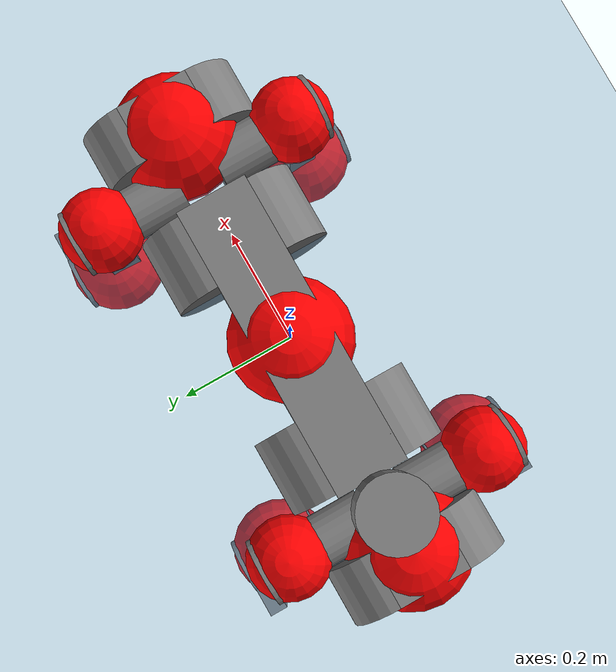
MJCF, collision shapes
<mujoco model="anymal_c">
  <compiler angle="radian" assetdir="assets" balanceinertia="true" inertiafromgeom="false"/>

  <option timestep="0.005" density="1.2" viscosity="2e-05"/>

  <size nkey="1"/>

  <visual>
    <quality shadowsize="8192"/>
    <map shadowclip="0.5"/>
  </visual>

  <default>
    <default class="/">
      <material specular="0" shininess="0.25"/>
      <geom contype="0" conaffinity="0" group="1" solref="-1000 -80"/>
      <site size="0.01 0.005 0.005" group="5"/>
      <general forcelimited="true" forcerange="-80 80" biastype="affine" gainprm="80" biasprm="0 -80 -2"/>
      <default class="anymal_c">
        <joint armature="0.01" damping="0.01" frictionloss="0.1"/>
        <default class="visual">
          <geom type="mesh" group="2"/>
          <default class="visual_zflip"/>
        </default>
        <default class="collision">
          <geom type="cylinder" group="3"/>
          <default class="foot">
            <geom size="0.03 0 0" type="sphere" condim="6" priority="1" friction="0.8 0.02 0.01" solimp="0.015 1 0.03"/>
          </default>
        </default>
      </default>
      <default class="reward_collision_sphere">
        <geom group="5" rgba="1 0 0 1"/>
      </default>
    </default>
  </default>

  <asset>
    <texture type="skybox" colorspace="auto" name="//unnamed_texture_0" builtin="gradient" rgb1="0.95 0.95 0.95" rgb2="0.95 0.95 0.95" width="100" height="600"/>
    <texture type="2d" colorspace="auto" name="texplane" builtin="checker" rgb1="0.345 0.575 0.748" rgb2="0.345 0.575 0.748" markrgb="1 1 1" width="512" height="512"/>
    <texture type="2d" colorspace="linear" name="base" file="base.png"/>
    <texture type="2d" colorspace="linear" name="top_shell" file="top_shell.png"/>
    <texture type="2d" colorspace="linear" name="bottom_shell" file="bottom_shell.png"/>
    <texture type="2d" colorspace="linear" name="remote" file="remote.png"/>
    <texture type="2d" colorspace="linear" name="hatch" file="hatch.png"/>
    <texture type="2d" colorspace="linear" name="handle" file="handle.png"/>
    <texture type="2d" colorspace="linear" name="face" file="face.png"/>
    <texture type="2d" colorspace="linear" name="battery" file="battery.png"/>
    <texture type="2d" colorspace="linear" name="lidar_cage" file="lidar_cage.png"/>
    <texture type="2d" colorspace="linear" name="depth_camera" file="depth_camera.png"/>
    <texture type="2d" colorspace="linear" name="wide_angle_camera" file="wide_angle_camera.png"/>
    <texture type="2d" colorspace="linear" name="lidar" file="lidar.png"/>
    <texture type="2d" colorspace="linear" name="drive" file="drive.png"/>
    <texture type="2d" colorspace="linear" name="hip_l" file="hip_l.png"/>
    <texture type="2d" colorspace="linear" name="shank_l" file="shank_l.png"/>
    <texture type="2d" colorspace="linear" name="foot" file="foot.png"/>
    <texture type="2d" colorspace="linear" name="thigh" file="thigh.png"/>
    <texture type="2d" colorspace="linear" name="shank_r" file="shank_r.png"/>
    <texture type="2d" colorspace="linear" name="hip_r" file="hip_r.png"/>
    <material name="MatPlane" class="/" texture="texplane" texuniform="true" texrepeat="2 2" specular="0.9" shininess="0.5"/>
    <material name="black_plastic" class="/" rgba="0.007 0.007 0.007 1"/>
    <material name="green" class="/" rgba="0.052 0.178 0.033 1"/>
    <material name="red" class="/" rgba="0.178 0.006 0.005 1"/>
    <material name="yellow" class="/" rgba="0.178 0.119 0.006 1"/>
    <material name="lwl" class="/" rgba="0.8 0.8 0.8 1"/>
    <material name="base" class="/" texture="base"/>
    <material name="top_shell" class="/" texture="top_shell"/>
    <material name="bottom_shell" class="/" texture="bottom_shell"/>
    <material name="hip_l" class="/" texture="hip_l"/>
    <material name="thigh" class="/" texture="thigh"/>
    <material name="shank_l" class="/" texture="shank_l"/>
    <material name="foot" class="/" texture="foot"/>
    <material name="hip_r" class="/" texture="hip_r"/>
    <material name="shank" class="/" texture="shank_r"/>
    <material name="hatch" class="/" texture="hatch"/>
    <material name="remote" class="/" texture="remote"/>
    <material name="handle" class="/" texture="handle"/>
    <material name="face" class="/" texture="face"/>
    <material name="depth_camera" class="/" texture="depth_camera"/>
    <material name="wide_angle_camera" class="/" texture="wide_angle_camera"/>
    <material name="battery" class="/" texture="battery"/>
    <material name="lidar_cage" class="/" texture="lidar_cage"/>
    <material name="lidar" class="/" texture="lidar"/>
    <material name="drive" class="/" texture="drive"/>
    <mesh name="base_0" class="/" file="base_0.obj"/>
    <mesh name="base_1" class="/" file="base_1.obj"/>
    <mesh name="base_2" class="/" file="base_2.obj"/>
    <mesh name="base_3" class="/" file="base_3.obj"/>
    <mesh name="base_4" class="/" file="base_4.obj"/>
    <mesh name="base_5" class="/" file="base_5.obj"/>
    <mesh name="top_shell" class="/" file="top_shell.obj"/>
    <mesh name="bottom_shell" class="/" file="bottom_shell.obj"/>
    <mesh name="remote" class="/" file="remote.obj"/>
    <mesh name="handle" class="/" file="handle.obj"/>
    <mesh name="face" class="/" file="face.obj"/>
    <mesh name="wide_angle_camera" class="/" file="wide_angle_camera.obj"/>
    <mesh name="depth_camera" class="/" file="depth_camera.obj"/>
    <mesh name="battery" class="/" file="battery.obj"/>
    <mesh name="lidar_cage" class="/" file="lidar_cage.obj"/>
    <mesh name="lidar" class="/" file="lidar.obj"/>
    <mesh name="drive" class="/" file="drive.obj"/>
    <mesh name="hip_l" class="/" file="hip_l.obj"/>
    <mesh name="thigh" class="/" file="thigh.obj"/>
    <mesh name="shank_l" class="/" file="shank_l.obj"/>
    <mesh name="foot" class="/" file="foot.obj"/>
    <mesh name="hip_r" class="/" file="hip_r.obj"/>
    <mesh name="hatch" class="/" file="hatch.obj"/>
    <mesh name="shank_r" class="/" file="shank_r.obj"/>
  </asset>

  <worldbody>
    <geom name="floor" class="/" size="100 100 0.125" type="plane" group="0" material="MatPlane"/>
    <light name="toplight_shadow" class="/" pos="0 0 5" dir="0.0990148 0.0990148 -0.990148" type="directional" ambient="0.04 0.04 0.04" diffuse="0.55 0.55 0.55" specular="0.12 0.12 0.12"/>
    <light name="toplight_fill" class="/" pos="0 0 5" dir="0.0990148 0.0990148 -0.990148" type="directional" castshadow="false" ambient="0.04 0.04 0.04" diffuse="0.3 0.3 0.3" specular="0.08 0.08 0.08"/>
    <body name="trunk" childclass="anymal_c" pos="-0.00233068 0.000112466 -0.002814" quat="0.999999 -0.00103852 3.8915e-05 0.000812313">
      <inertial pos="-0.000868104 0.00256979 0.0493873" quat="0.502209 0.493069 0.501131 0.503524" mass="14.6496" diaginertia="0.339627 0.272259 0.217931"/>
      <joint name="//unnamed_joint_0" type="free" armature="0" damping="0" frictionloss="0"/>
      <geom name="//unnamed_geom_1" class="visual" material="green" mesh="base_0"/>
      <geom name="//unnamed_geom_2" class="visual" material="yellow" mesh="base_1"/>
      <geom name="//unnamed_geom_3" class="visual" material="red" mesh="base_2"/>
      <geom name="//unnamed_geom_4" class="visual" material="black_plastic" mesh="base_3"/>
      <geom name="//unnamed_geom_5" class="visual" material="lwl" mesh="base_4"/>
      <geom name="//unnamed_geom_6" class="visual" material="base" mesh="base_5"/>
      <geom name="trunk_1" class="collision" size="0.263669 0.0636442 0.0818282" type="box"/>
      <geom name="trunk_2" class="collision" size="0.0818282 0.0659172" pos="0.191109 0.0594515 0" quat="0.707107 0 0.707107 0"/>
      <geom name="trunk_3" class="collision" size="0.0818282 0.0659172" pos="-0.191109 0.0594515 0" quat="0.707107 0 0.707107 0"/>
      <geom name="trunk_4" class="collision" size="0.0818282 0.0659172" pos="0.191109 -0.0594515 0" quat="0.707107 0 0.707107 0"/>
      <geom name="trunk_5" class="collision" size="0.0818282 0.0659172" pos="-0.191109 -0.0594515 0" quat="0.707107 0 0.707107 0"/>
      <geom name="//unnamed_geom_12" class="visual" material="top_shell" mesh="top_shell"/>
      <geom name="//unnamed_geom_13" class="visual" material="bottom_shell" mesh="bottom_shell"/>
      <geom name="//unnamed_geom_14" class="visual" material="remote" mesh="remote"/>
      <geom name="//unnamed_geom_15" class="visual" material="handle" mesh="handle"/>
      <geom name="//unnamed_geom_16" class="visual" pos="0.364206 0 0" quat="1 0 0 0" material="face" mesh="face"/>
      <geom name="trunk_6" class="collision" size="0.0500061 0.0636442 0.0818282" pos="0.412533 0 0" type="box"/>
      <geom name="//unnamed_geom_18" class="collision" size="0.0818282 0.0500061" pos="0.412533 0.0594515 0" quat="0.707107 0 0.707107 0"/>
      <geom name="//unnamed_geom_19" class="collision" size="0.0818282 0.0500061" pos="0.412533 -0.0594515 0" quat="0.707107 0 0.707107 0"/>
      <geom name="//unnamed_geom_20" class="visual" pos="0.40564 0 -0.0301088" quat="0.965926 0 0.258819 0" material="depth_camera" mesh="depth_camera"/>
      <geom name="//unnamed_geom_21" class="visual" pos="0.450754 0 0.0149646" material="wide_angle_camera" mesh="wide_angle_camera"/>
      <geom name="//unnamed_geom_22" class="visual_zflip" pos="-0.364206 0 0" quat="0 0 0 1" material="face" mesh="face"/>
      <geom name="trunk_7" class="collision" size="0.0500061 0.0636442 0.0818282" pos="-0.412533 0 0" quat="0 0 0 1" type="box"/>
      <geom name="//unnamed_geom_24" class="collision" size="0.0818282 0.0500061" pos="-0.412533 -0.0594515 0" quat="0 -0.707107 0 0.707107"/>
      <geom name="//unnamed_geom_25" class="collision" size="0.0818282 0.0500061" pos="-0.412533 0.0594515 0" quat="0 -0.707107 0 0.707107"/>
      <geom name="//unnamed_geom_26" class="visual" pos="-0.40564 0 -0.0301088" quat="0 -0.258819 0 0.965926" material="depth_camera" mesh="depth_camera"/>
      <geom name="//unnamed_geom_27" class="visual_zflip" pos="-0.450754 0 0.0149646" quat="0 0 0 1" material="wide_angle_camera" mesh="wide_angle_camera"/>
      <geom name="//unnamed_geom_28" class="visual" material="battery" mesh="battery"/>
      <geom name="//unnamed_geom_29" class="visual" pos="0 0.0645578 0.02812" quat="0.683013 -0.183013 0.183013 0.683013" material="depth_camera" mesh="depth_camera"/>
      <geom name="//unnamed_geom_30" class="visual" pos="0 -0.0645578 0.02812" quat="0.683013 0.183013 0.183013 -0.683013" material="depth_camera" mesh="depth_camera"/>
      <geom name="//unnamed_geom_31" class="visual" pos="-0.319834 0 0.0734733" quat="1 0 0 0" material="lidar_cage" mesh="lidar_cage"/>
      <geom name="trunk_8" class="collision" size="0.0636442 0.0545521" pos="-0.319834 0 0.133451"/>
      <geom name="//unnamed_geom_33" class="visual" pos="-0.319834 -1.15333e-05 0.142148" quat="0.707107 0 0 -0.707107" material="lidar" mesh="lidar"/>
      <geom name="//unnamed_geom_34" class="visual" pos="0.263511 0.0883814 -2.59319e-09" quat="0.258819 0.965926 0 0" material="drive" mesh="drive"/>
      <geom name="//unnamed_geom_35" class="visual" pos="0.263511 -0.0883814 2.59319e-09" quat="0.258819 -0.965926 0 0" material="drive" mesh="drive"/>
      <geom name="//unnamed_geom_36" class="visual" pos="-0.263511 0.0883814 2.59319e-09" quat="0 0 0.965926 -0.258819" material="drive" mesh="drive"/>
      <geom name="//unnamed_geom_37" class="visual" pos="-0.263511 -0.0883814 -2.59319e-09" quat="0 0 -0.965926 -0.258819" material="drive" mesh="drive"/>
      <geom name="//unnamed_geom_38" class="visual" pos="0.101925 0 0.0729734" quat="1 0 0 0" material="hatch" mesh="hatch"/>
      <geom name="//unnamed_geom_39" class="reward_collision_sphere" size="0.109104"/>
      <geom name="//unnamed_geom_40" class="reward_collision_sphere" size="0.109104" pos="0.395399 0 0"/>
      <geom name="//unnamed_geom_41" class="reward_collision_sphere" size="0.109104" pos="-0.395399 0 0"/>
      <site name="imu" pos="0.232581 0.0107615 0.0341044" size="0.00909202"/>
      <camera name="track" pos="0 -1.69861 0" quat="0.707107 0.707107 0 0" mode="trackcom"/>
      <camera name="ego_camera" pos="0.395399 0 -0.0399854" quat="-0.5 -0.5 0.5 0.5"/>
      <body name="LF_HIP" pos="0.26334 0.0876529 -0.00164558" quat="0.258887 0.965908 -2.0166e-05 6.0736e-05">
        <inertial pos="0.0470662 -0.0135927 -0.00979915" quat="-0.124706 0.708711 -0.125229 0.683005" mass="2.09961" diaginertia="0.00308359 0.00219815 0.00342149"/>
        <joint name="LF_HAA" pos="0 0 0" axis="0.999872 -0.0144802 0.00675561" range="-0.705796 0.481249" armature="0.0101108" damping="0.00511612" frictionloss="0.0896331"/>
        <geom name="//unnamed_geom_42" class="visual" pos="0 -0.000152545 2.50555e-05" quat="0.258819 -0.965926 0 0" material="hip_l" mesh="hip_l"/>
        <geom name="//unnamed_geom_43" class="visual" pos="0.052632 -0.0634417 -0.03774" quat="0.183013 -0.683013 0.683013 0.183013" material="drive" mesh="drive"/>
        <geom name="//unnamed_geom_44" class="collision" size="0.0454601 0.0636442" pos="0.052632 -0.0101575 -0.00690249" quat="-0.353553 -0.612372 0.612372 -0.353553"/>
        <body name="LF_THIGH" pos="0.0531879 -0.0622818 -0.0456963" quat="0.18305 -0.682896 0.683137 0.182949">
          <inertial pos="0.0281576 -0.000538724 -0.244809" quat="0.992835 0.00374253 -0.0808184 0.0879365" mass="2.26122" diaginertia="0.015751 0.0125892 0.00416777"/>
          <joint name="LF_HFE" pos="0 0 0" axis="0.999986 0.00141259 0.0050174" stiffness="0.0135037" range="-3.14075 3.13408" armature="0.0078741" damping="0.00754669" frictionloss="0.0902731"/>
          <geom name="//unnamed_geom_45" class="visual" pos="0.000584074 9.20364e-07 0" quat="0.707107 0 0 -0.707107" material="thigh" mesh="thigh"/>
          <geom name="//unnamed_geom_46" class="collision" size="0.0590982 0.0363681" pos="0.0351465 0 0" quat="0.5 0.5 -0.5 -0.5"/>
          <geom name="//unnamed_geom_47" class="collision" size="0.0340951 0.0272761 0.128483" pos="0.0263599 0 -0.141263" quat="0.707107 0 0 -0.707107" type="box"/>
          <geom name="//unnamed_geom_48" class="visual" pos="0.08813 0 -0.284896" quat="1 0 0 0" material="drive" mesh="drive"/>
          <geom name="//unnamed_geom_49" class="collision" size="0.0454601 0.0636442" pos="0.0266235 0 -0.284896" quat="0.707107 0 0.707107 0"/>
          <geom name="//unnamed_geom_50" class="reward_collision_sphere" size="0.0727362" pos="0.0219666 0 0"/>
          <body name="LF_SHANK" pos="0.0871634 -0.000235366 -0.282612" quat="1 -9.42214e-05 5.7426e-05 -4.02603e-05">
            <inertial pos="0.00291627 -0.0547318 -0.0782162" quat="0.992933 -0.116106 0.00119031 -0.0245408" mass="0.442312" diaginertia="0.00544023 0.00398261 0.00111435"/>
            <joint name="LF_KFE" pos="0 0 0" axis="1 0.000341706 0.000477316" range="-3.08985 3.11697" armature="0.00906137" damping="0.00838037" frictionloss="0.0916902"/>
            <geom name="//unnamed_geom_51" class="visual" pos="0.000190454 0.00101551 0" quat="0.707107 0 0 -0.707107" material="shank_l" mesh="shank_l"/>
            <geom name="LF_kfe_act" class="collision" size="0.0545521 0.018184" pos="0.0175733 0 0" quat="0.5 0.5 -0.5 -0.5"/>
            <geom name="//unnamed_geom_53" class="collision" size="0.0522782 0.0306856 0.0172748" pos="0.0175733 -0.0488343 0" quat="0.5 0.5 -0.5 -0.5" type="box"/>
            <geom name="//unnamed_geom_54" class="visual" pos="0.0114665 -0.0743693 -0.337847" quat="0.382683 0 0 -0.92388" material="foot" mesh="foot"/>
            <geom name="LF_calf" class="collision" size="0.015911 0.128427" pos="0.0114666 -0.0746966 -0.168924" quat="0.707107 0 0 -0.707107"/>
            <geom name="LF_foot" class="foot" size="0.0276228" pos="0.0114666 -0.0746966 -0.315355" quat="0.707107 0 0 -0.707107"/>
            <geom name="//unnamed_geom_57" class="reward_collision_sphere" size="0.0909202" pos="-0.0439332 0 0"/>
            <geom name="//unnamed_geom_58" class="reward_collision_sphere" size="0.0454601" pos="0.0114666 -0.0746966 -0.315355"/>
            <site name="LF_foot" class="foot" pos="0.0114666 -0.0746966 -0.315355" quat="0.707107 0 0 -0.707107" size="0.00909202"/>
          </body>
        </body>
      </body>
      <body name="RF_HIP" pos="0.266893 -0.0856921 0.000725489" quat="0.25907 -0.965858 0.000217346 -5.84593e-05">
        <inertial pos="0.0482924 0.0108938 -0.00900676" quat="0.133102 0.679295 0.129967 0.709895" mass="2.0839" diaginertia="0.00297072 0.00225425 0.0033251"/>
        <joint name="RF_HAA" pos="0 0 0" axis="1 0.000944953 -9.08164e-05" range="-0.448021 0.703961" armature="0.00901212" damping="0.0119148" frictionloss="0.101325"/>
        <geom name="//unnamed_geom_59" class="visual" pos="0 0.000152544 2.50554e-05" quat="0.258819 0.965926 0 0" material="hip_r" mesh="hip_r"/>
        <geom name="//unnamed_geom_60" class="visual" pos="0.052632 0.0634417 -0.03774" quat="0.183013 0.683013 0.683013 -0.183013" material="drive" mesh="drive"/>
        <geom name="//unnamed_geom_61" class="collision" size="0.0454601 0.0636442" pos="0.052632 0.0101575 -0.00690249" quat="-0.353553 0.612372 0.612372 0.353553"/>
        <body name="RF_THIGH" pos="0.0557233 0.0624023 -0.0442575" quat="0.183228 0.683018 0.682805 -0.183551">
          <inertial pos="0.026776 0.00013761 -0.245648" quat="0.99274 -0.00783182 -0.0778922 0.0913187" mass="2.37897" diaginertia="0.0153561 0.0132912 0.00420161"/>
          <joint name="RF_HFE" pos="0 0 0" axis="0.999981 -0.00245833 0.005635" stiffness="0.00634939" range="-3.14928 3.17571" armature="0.00834454" damping="0.00875834" frictionloss="0.0965051"/>
          <geom name="//unnamed_geom_62" class="visual" pos="0.000584074 9.20364e-07 0" quat="0.707107 0 0 -0.707107" material="thigh" mesh="thigh"/>
          <geom name="//unnamed_geom_63" class="collision" size="0.0590982 0.0363681" pos="0.0351465 0 0" quat="0.5 0.5 0.5 0.5"/>
          <geom name="//unnamed_geom_64" class="collision" size="0.0340951 0.0272761 0.128483" pos="0.0263599 0 -0.141263" quat="0.707107 0 0 0.707107" type="box"/>
          <geom name="//unnamed_geom_65" class="visual" pos="0.08813 0 -0.284896" quat="1 0 0 0" material="drive" mesh="drive"/>
          <geom name="//unnamed_geom_66" class="collision" size="0.0454601 0.0636442" pos="0.0266235 0 -0.284896" quat="0.707107 0 0.707107 0"/>
          <geom name="//unnamed_geom_67" class="reward_collision_sphere" size="0.0727362" pos="0.0219666 0 0"/>
          <body name="RF_SHANK" pos="0.0882803 -0.000628665 -0.283594" quat="1 -0.000168574 3.78906e-05 3.07442e-05">
            <inertial pos="0.00615059 0.0510025 -0.0815624" quat="0.992585 0.119146 -0.0135254 0.0199145" mass="0.436613" diaginertia="0.00556822 0.00410264 0.00111944"/>
            <joint name="RF_KFE" pos="0 0 0" axis="0.999997 0.00222967 0.00111761" stiffness="0.00168432" range="-3.15941 3.08068" armature="0.0100936" damping="0.00768073" frictionloss="0.0904382"/>
            <geom name="//unnamed_geom_68" class="visual" pos="0.000190453 -0.00101551 0" quat="0.707107 0 0 0.707107" material="shank" mesh="shank_r"/>
            <geom name="RF_kfe_act" class="collision" size="0.0545521 0.018184" pos="0.0175733 0 0" quat="0.5 0.5 0.5 0.5"/>
            <geom name="//unnamed_geom_70" class="collision" size="0.0522782 0.0306856 0.0172748" pos="0.0175733 0.0488343 0" quat="0.5 0.5 0.5 0.5" type="box"/>
            <geom name="//unnamed_geom_71" class="visual" pos="0.0114666 0.0743693 -0.337847" quat="0.382683 0 0 0.92388" material="foot" mesh="foot"/>
            <geom name="RF_calf" class="collision" size="0.015911 0.128427" pos="0.0114666 0.0746966 -0.168924" quat="0.707107 0 0 0.707107"/>
            <geom name="RF_foot" class="foot" size="0.0294298" pos="0.0114666 0.0746966 -0.315355" quat="0.707107 0 0 0.707107"/>
            <geom name="//unnamed_geom_74" class="reward_collision_sphere" size="0.0909202" pos="-0.0439332 0 0"/>
            <geom name="//unnamed_geom_75" class="reward_collision_sphere" size="0.0454601" pos="0.0114666 0.0746966 -0.315355"/>
            <site name="RF_foot" class="foot" pos="0.0114666 0.0746966 -0.315355" quat="0.707107 0 0 0.707107" size="0.00909202"/>
          </body>
        </body>
      </body>
      <body name="LH_HIP" pos="-0.262942 0.086336 1.63373e-05" quat="0.000297708 0.000183529 0.965984 -0.258603">
        <inertial pos="0.0496377 0.0134816 -0.00913796" quat="0.13515 0.679054 0.127837 0.710125" mass="2.11556" diaginertia="0.00312588 0.00211152 0.00326068"/>
        <joint name="LH_HAA" pos="0 0 0" axis="0.999998 -0.000239374 0.00171666" range="-0.499683 0.738528" armature="0.00916136" damping="0" frictionloss="0.0948918"/>
        <geom name="//unnamed_geom_76" class="visual" pos="0 0.000152544 2.50554e-05" quat="-0.258819 -0.965926 0 0" material="hip_r" mesh="hip_r"/>
        <geom name="//unnamed_geom_77" class="visual" pos="0.052632 0.0634417 -0.03774" quat="0.183013 0.683013 0.683013 -0.183013" material="drive" mesh="drive"/>
        <geom name="//unnamed_geom_78" class="collision" size="0.0454601 0.0636442" pos="0.052632 0.0101575 -0.00690249" quat="-0.353553 0.612372 0.612372 0.353553"/>
        <body name="LH_THIGH" pos="0.0510447 0.0607572 -0.0424891" quat="0.183041 0.683047 0.682982 -0.182969">
          <inertial pos="0.026055 9.89791e-05 -0.244832" quat="0.992233 -0.00408429 -0.0827202 0.092814" mass="2.36255" diaginertia="0.0162912 0.0134912 0.00427443"/>
          <joint name="LH_HFE" pos="0 0 0" axis="0.999976 0.00619157 -0.00302399" range="-3.15855 3.11866" armature="0.0101663" damping="0.0184642" frictionloss="0.0935412"/>
          <geom name="//unnamed_geom_79" class="visual" pos="0.000584074 9.20364e-07 0" quat="0.707107 0 0 -0.707107" material="thigh" mesh="thigh"/>
          <geom name="//unnamed_geom_80" class="collision" size="0.0590982 0.0363681" pos="0.0351465 0 0" quat="0.5 0.5 -0.5 -0.5"/>
          <geom name="//unnamed_geom_81" class="collision" size="0.0340951 0.0272761 0.128483" pos="0.0263599 0 -0.141263" quat="0.707107 0 0 -0.707107" type="box"/>
          <geom name="//unnamed_geom_82" class="visual" pos="0.08813 0 -0.284896" quat="1 0 0 0" material="drive" mesh="drive"/>
          <geom name="//unnamed_geom_83" class="collision" size="0.0454601 0.0636442" pos="0.0266235 0 -0.284896" quat="0.707107 0 0.707107 0"/>
          <geom name="//unnamed_geom_84" class="reward_collision_sphere" size="0.0727362" pos="0.0219666 0 0"/>
          <body name="LH_SHANK" pos="0.0859525 0.00177629 -0.286843" quat="1 -0.000289283 -0.000140695 0.00030691">
            <inertial pos="0.00759851 0.0491811 -0.0781639" quat="0.992832 0.117868 -0.00660211 0.0186359" mass="0.432459" diaginertia="0.00531547 0.00423652 0.0010898"/>
            <joint name="LH_KFE" pos="0 0 0" axis="0.99989 -0.00387484 0.0143207" stiffness="0.00365572" range="-3.10178 3.13807" armature="0.00907031" damping="0.0100015" frictionloss="0.10344"/>
            <geom name="//unnamed_geom_85" class="visual" pos="0.000190453 -0.00101551 0" quat="-0.707107 0 0 -0.707107" material="shank" mesh="shank_r"/>
            <geom name="LH_kfe_act" class="collision" size="0.0545521 0.018184" pos="0.0175733 0 0" quat="0.5 0.5 -0.5 -0.5"/>
            <geom name="//unnamed_geom_87" class="collision" size="0.0522782 0.0306856 0.0172748" pos="0.0175733 0.0488343 0" quat="0.5 0.5 -0.5 -0.5" type="box"/>
            <geom name="//unnamed_geom_88" class="visual" pos="0.0114666 0.0743693 -0.337847" quat="-0.382683 0 0 -0.92388" material="foot" mesh="foot"/>
            <geom name="LH_calf" class="collision" size="0.015911 0.128427" pos="0.0114666 0.0746966 -0.168924" quat="0.707107 0 0 -0.707107"/>
            <geom name="LH_foot" class="foot" size="0.0315004" pos="0.0114666 0.0746966 -0.315355" quat="0.707107 0 0 -0.707107"/>
            <geom name="//unnamed_geom_91" class="reward_collision_sphere" size="0.0909202" pos="-0.0439332 0 0"/>
            <geom name="//unnamed_geom_92" class="reward_collision_sphere" size="0.0454601" pos="0.0114666 0.0746966 -0.315355"/>
            <site name="LH_foot" class="foot" pos="0.0114666 0.0746966 -0.315355" quat="0.707107 0 0 -0.707107" size="0.00909202"/>
          </body>
        </body>
      </body>
      <body name="RH_HIP" pos="-0.263548 -0.0912256 0.000847616" quat="-0.000669144 -0.000473143 -0.965781 -0.259357">
        <inertial pos="0.049085 -0.0120498 -0.0108203" quat="-0.127104 0.709856 -0.135766 0.67935" mass="2.1685" diaginertia="0.00305818 0.0021578 0.00328713"/>
        <joint name="RH_HAA" pos="0 0 0" axis="0.999963 -0.000481487 -0.00857209" range="-0.676956 0.457267" armature="0.00787116" damping="0.00236594" frictionloss="0.10194"/>
        <geom name="//unnamed_geom_93" class="visual" pos="0 -0.000152545 2.50555e-05" quat="-0.258819 0.965926 0 0" material="hip_l" mesh="hip_l"/>
        <geom name="//unnamed_geom_94" class="visual" pos="0.052632 -0.0634417 -0.03774" quat="-0.183013 0.683013 -0.683013 -0.183013" material="drive" mesh="drive"/>
        <geom name="//unnamed_geom_95" class="collision" size="0.0454601 0.0636442" pos="0.052632 -0.0101575 -0.00690249" quat="0.353553 0.612372 -0.612372 0.353553"/>
        <body name="RH_THIGH" pos="0.0535666 -0.0606514 -0.0411955" quat="-0.183014 0.683007 -0.683027 -0.182981">
          <inertial pos="0.0246319 0.00228161 -0.245295" quat="0.993126 -0.00605528 -0.0812041 0.0840864" mass="2.21283" diaginertia="0.0160541 0.0130329 0.00417979"/>
          <joint name="RH_HFE" pos="0 0 0" axis="0.999904 -0.0101492 0.00948048" stiffness="0.00595269" range="-3.14862 3.15967" armature="0.00882702" damping="0.0061521" frictionloss="0.0837054"/>
          <geom name="//unnamed_geom_96" class="visual" pos="0.000584074 9.20364e-07 0" quat="0.707107 0 0 -0.707107" material="thigh" mesh="thigh"/>
          <geom name="//unnamed_geom_97" class="collision" size="0.0590982 0.0363681" pos="0.0351465 0 0" quat="0.5 0.5 0.5 0.5"/>
          <geom name="//unnamed_geom_98" class="collision" size="0.0340951 0.0272761 0.128483" pos="0.0263599 0 -0.141263" quat="0.707107 0 0 0.707107" type="box"/>
          <geom name="//unnamed_geom_99" class="visual" pos="0.08813 0 -0.284896" quat="1 0 0 0" material="drive" mesh="drive"/>
          <geom name="//unnamed_geom_100" class="collision" size="0.0454601 0.0636442" pos="0.0266235 0 -0.284896" quat="0.707107 0 0.707107 0"/>
          <geom name="//unnamed_geom_101" class="reward_collision_sphere" size="0.0727362" pos="0.0219666 0 0"/>
          <body name="RH_SHANK" pos="0.0881228 -0.000405205 -0.285569" quat="1 -0.000123305 -0.000111015 -0.000200851">
            <inertial pos="0.00732663 -0.0520351 -0.081202" quat="0.992954 -0.115537 -0.000227793 -0.0263175" mass="0.41696" diaginertia="0.00508418 0.00398909 0.00106931"/>
            <joint name="RH_KFE" pos="0 0 0" axis="0.99995 0.00535665 -0.00841989" range="-3.12662 3.19049" armature="0.00795249" damping="0.0111312" frictionloss="0.093569"/>
            <geom name="//unnamed_geom_102" class="visual" pos="0.000190454 0.00101551 0" quat="0.707107 0 0 -0.707107" material="shank_l" mesh="shank_l"/>
            <geom name="RH_kfe_act" class="collision" size="0.0545521 0.018184" pos="0.0175733 0 0" quat="0.5 0.5 0.5 0.5"/>
            <geom name="//unnamed_geom_104" class="collision" size="0.0522782 0.0306856 0.0172748" pos="0.0175733 -0.0488343 0" quat="0.5 0.5 0.5 0.5" type="box"/>
            <geom name="//unnamed_geom_105" class="visual" pos="0.0114665 -0.0743693 -0.337847" quat="0.382683 0 0 -0.92388" material="foot" mesh="foot"/>
            <geom name="RH_calf" class="collision" size="0.015911 0.128427" pos="0.0114666 -0.0746966 -0.168924" quat="0.707107 0 0 0.707107"/>
            <geom name="RH_foot" class="foot" size="0.0222699" pos="0.0114666 -0.0746966 -0.315355" quat="0.707107 0 0 0.707107"/>
            <geom name="//unnamed_geom_108" class="reward_collision_sphere" size="0.0909202" pos="-0.0439332 0 0"/>
            <geom name="//unnamed_geom_109" class="reward_collision_sphere" size="0.0454601" pos="0.0114666 -0.0746966 -0.315355"/>
            <site name="RH_foot" class="foot" pos="0.0114666 -0.0746966 -0.315355" quat="0.707107 0 0 0.707107" size="0.00909202"/>
          </body>
        </body>
      </body>
    </body>
  </worldbody>

  <contact>
    <pair class="/" geom1="floor" geom2="LF_foot" name="//unnamed_contact_0"/>
    <pair class="/" geom1="floor" geom2="RF_foot" name="//unnamed_contact_1"/>
    <pair class="/" geom1="floor" geom2="LH_foot" name="//unnamed_contact_2"/>
    <pair class="/" geom1="floor" geom2="RH_foot" name="//unnamed_contact_3"/>
  </contact>

  <actuator>
    <general name="LF_HAA" class="/" joint="LF_HAA" forcerange="-77.7334 77.7334" gainprm="66.3347" biasprm="0 -66.3347 -1.83464"/>
    <general name="LF_HFE" class="/" joint="LF_HFE" forcerange="-76.2583 76.2583" gainprm="66.3347" biasprm="0 -66.3347 -1.83464"/>
    <general name="LF_KFE" class="/" joint="LF_KFE" forcerange="-69.6645 69.6645" gainprm="66.3347" biasprm="0 -66.3347 -1.83464"/>
    <general name="RF_HAA" class="/" joint="RF_HAA" forcerange="-72.4545 72.4545" gainprm="66.3347" biasprm="0 -66.3347 -1.83464"/>
    <general name="RF_HFE" class="/" joint="RF_HFE" forcerange="-81.5677 81.5677" gainprm="66.3347" biasprm="0 -66.3347 -1.83464"/>
    <general name="RF_KFE" class="/" joint="RF_KFE" forcerange="-69.6916 69.6916" gainprm="66.3347" biasprm="0 -66.3347 -1.83464"/>
    <general name="LH_HAA" class="/" joint="LH_HAA" forcerange="-74.3685 74.3685" gainprm="66.3347" biasprm="0 -66.3347 -1.83464"/>
    <general name="LH_HFE" class="/" joint="LH_HFE" forcerange="-81.1856 81.1856" gainprm="66.3347" biasprm="0 -66.3347 -1.83464"/>
    <general name="LH_KFE" class="/" joint="LH_KFE" forcerange="-71.0593 71.0593" gainprm="66.3347" biasprm="0 -66.3347 -1.83464"/>
    <general name="RH_HAA" class="/" joint="RH_HAA" forcerange="-71.659 71.659" gainprm="66.3347" biasprm="0 -66.3347 -1.83464"/>
    <general name="RH_HFE" class="/" joint="RH_HFE" forcerange="-74.048 74.048" gainprm="66.3347" biasprm="0 -66.3347 -1.83464"/>
    <general name="RH_KFE" class="/" joint="RH_KFE" forcerange="-68.171 68.171" gainprm="66.3347" biasprm="0 -66.3347 -1.83464"/>
  </actuator>

  <sensor>
    <gyro site="imu" name="imu_angular_velocity"/>
    <velocimeter site="imu" name="imu_linear_velocity"/>
    <framelinvel objtype="site" objname="LF_foot" name="LF_foot_global_linear_velocity"/>
    <framelinvel objtype="site" objname="RF_foot" name="RF_foot_global_linear_velocity"/>
    <framelinvel objtype="site" objname="LH_foot" name="LH_foot_global_linear_velocity"/>
    <framelinvel objtype="site" objname="RH_foot" name="RH_foot_global_linear_velocity"/>
  </sensor>

  <keyframe>
    <key name="home" qpos="0 0 0.55 1 0 0 0 0 0.4 -0.8 0 -0.4 0.8 0 -0.4 0.8 0 0.4 -0.8"/>
  </keyframe>
</mujoco>
